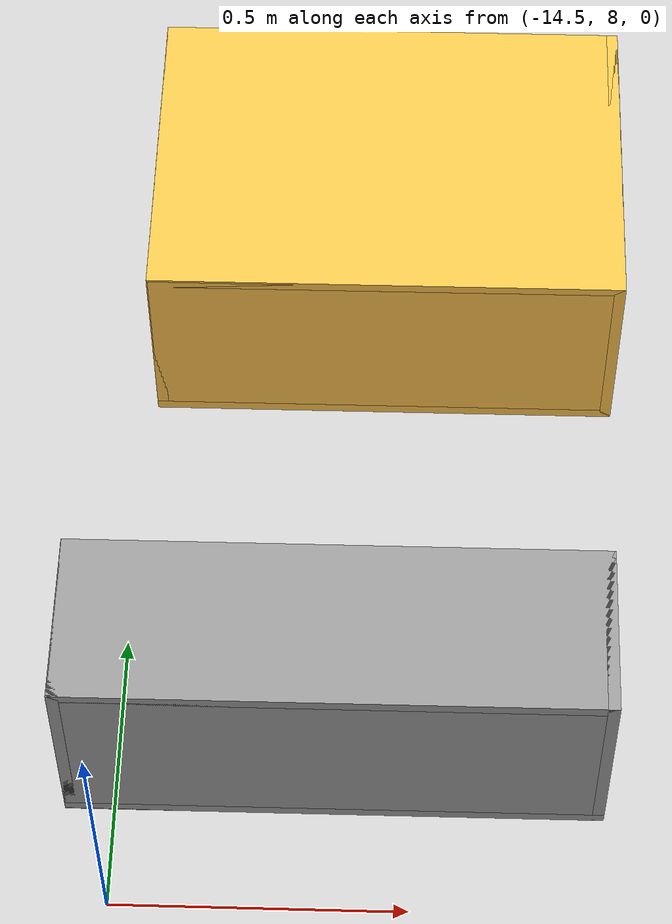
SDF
<sdf version="1.6">
 <world name="default">
  <model name="ground_plane">
   <static>1</static>
   <link name="link">
    <collision name="collision">
     <geometry><plane><normal>0 0 1</normal><size>100 100</size></plane></geometry>
     <surface><friction><ode><mu>100</mu><mu2>50</mu2></ode></friction></surface>
    </collision>
    <visual name="visual">
     <cast_shadows>0</cast_shadows>
     <geometry><plane><normal>0 0 1</normal><size>100 100</size></plane></geometry>
     <material>
      <script><uri>file://media/materials/scripts/gazebo.material</uri><name>Gazebo/Grey</name></script>
     </material>
    </visual>
   </link>
  </model>
  <model name="Fridge_Cabinet_33x15_0">
   <link name="Wall_17">
    <pose>0 0 0.01 0 -0 0</pose>
    <inertial>
     <mass>4.8627</mass>
     <inertia><ixx>0.146</ixx><iyy>0.4318</iyy><izz>0.2861</izz><ixy>0</ixy><ixz>0</ixz><iyz>0</iyz></inertia>
    </inertial>
    <collision name="Wall_17_Collision"><geometry><box><size>0.84 0.6 0.02</size></box></geometry></collision>
    <visual name="Wall_17_Visual">
     <geometry><box><size>0.84 0.6 0.02</size></box></geometry>
     <material>
      <script><uri>file://media/materials/scripts/gazebo.material</uri><name>Gazebo/Grey</name></script>
      <ambient>1 0.764706 0.305882 1</ambient>
     </material>
    </visual>
   </link>
   <joint name="17_21" type="fixed">
    <pose>0.42 0 0 0 -0 0</pose>
    <parent>Wall_21</parent>
    <child>Wall_17</child>
    <axis>
     <xyz>1 0 0</xyz>
     <use_parent_model_frame>0</use_parent_model_frame>
     <limit><lower>-1e+16</lower><upper>1e+16</upper></limit>
    </axis>
   </joint>
   <joint name="17_19" type="fixed">
    <pose>-0.42 0 0 0 -0 0</pose>
    <parent>Wall_19</parent>
    <child>Wall_17</child>
    <axis>
     <xyz>1 0 0</xyz>
     <use_parent_model_frame>0</use_parent_model_frame>
     <limit><lower>-1e+16</lower><upper>1e+16</upper></limit>
    </axis>
   </joint>
   <joint name="17_25" type="fixed">
    <pose>0 -0.3 0 0 -0 0</pose>
    <parent>Wall_25</parent>
    <child>Wall_17</child>
    <axis>
     <xyz>0 1 0</xyz>
     <use_parent_model_frame>0</use_parent_model_frame>
     <limit><lower>-1e+16</lower><upper>1e+16</upper></limit>
    </axis>
   </joint>
   <link name="Wall_19">
    <pose>-0.41 0 0.192 0 -0 0</pose>
    <inertial>
     <mass>2.223</mass>
     <inertia><ixx>0.0668</ixx><iyy>0.094</iyy><izz>0.0274</izz><ixy>0</ixy><ixz>0</ixz><iyz>0</iyz></inertia>
    </inertial>
    <collision name="Wall_19_Collision"><geometry><box><size>0.02 0.6 0.384</size></box></geometry></collision>
    <visual name="Wall_19_Visual">
     <geometry><box><size>0.02 0.6 0.384</size></box></geometry>
     <material>
      <script><uri>file://media/materials/scripts/gazebo.material</uri><name>Gazebo/Grey</name></script>
      <ambient>1 0.764706 0.305882 1</ambient>
     </material>
    </visual>
   </link>
   <link name="Wall_21">
    <pose>0.41 0 0.192 0 -0 0</pose>
    <inertial>
     <mass>2.223</mass>
     <inertia><ixx>0.0668</ixx><iyy>0.094</iyy><izz>0.0274</izz><ixy>0</ixy><ixz>0</ixz><iyz>0</iyz></inertia>
    </inertial>
    <collision name="Wall_21_Collision"><geometry><box><size>0.02 0.6 0.384</size></box></geometry></collision>
    <visual name="Wall_21_Visual">
     <geometry><box><size>0.02 0.6 0.384</size></box></geometry>
     <material>
      <script><uri>file://media/materials/scripts/gazebo.material</uri><name>Gazebo/Grey</name></script>
      <ambient>1 0.764706 0.305882 1</ambient>
     </material>
    </visual>
   </link>
   <link name="Wall_23">
    <pose>0 0 0.374 0 -0 0</pose>
    <inertial>
     <mass>4.8627</mass>
     <inertia><ixx>0.146</ixx><iyy>0.4318</iyy><izz>0.2861</izz><ixy>0</ixy><ixz>0</ixz><iyz>0</iyz></inertia>
    </inertial>
    <collision name="Wall_23_Collision"><geometry><box><size>0.84 0.6 0.02</size></box></geometry></collision>
    <visual name="Wall_23_Visual">
     <geometry><box><size>0.84 0.6 0.02</size></box></geometry>
     <material>
      <script><uri>file://media/materials/scripts/gazebo.material</uri><name>Gazebo/Grey</name></script>
      <ambient>1 0.764706 0.305882 1</ambient>
     </material>
    </visual>
   </link>
   <joint name="23_21" type="fixed">
    <pose>0.42 0 0 0 -0 0</pose>
    <parent>Wall_21</parent>
    <child>Wall_23</child>
    <axis>
     <xyz>0 0 1</xyz>
     <use_parent_model_frame>0</use_parent_model_frame>
     <limit><lower>-1e+16</lower><upper>1e+16</upper></limit>
    </axis>
   </joint>
   <joint name="23_19" type="fixed">
    <pose>-0.42 0 0 0 -0 0</pose>
    <parent>Wall_19</parent>
    <child>Wall_23</child>
    <axis>
     <xyz>0 0 1</xyz>
     <use_parent_model_frame>0</use_parent_model_frame>
     <limit><lower>-1e+16</lower><upper>1e+16</upper></limit>
    </axis>
   </joint>
   <joint name="23_25" type="fixed">
    <pose>0 -0.3 0 0 -0 0</pose>
    <parent>Wall_25</parent>
    <child>Wall_23</child>
    <axis>
     <xyz>0 0 1</xyz>
     <use_parent_model_frame>0</use_parent_model_frame>
     <limit><lower>-1e+16</lower><upper>1e+16</upper></limit>
    </axis>
   </joint>
   <link name="Wall_25">
    <pose>0 -0.29 0.19 0 -0 0</pose>
    <inertial>
     <mass>3.0651</mass>
     <inertia><ixx>0.037</ixx><iyy>0.1786</iyy><izz>0.2154</izz><ixy>0</ixy><ixz>0</ixz><iyz>0</iyz></inertia>
    </inertial>
    <collision name="Wall_25_Collision"><geometry><box><size>0.836 0.02 0.38</size></box></geometry></collision>
    <visual name="Wall_25_Visual">
     <geometry><box><size>0.836 0.02 0.38</size></box></geometry>
     <material>
      <script><uri>file://media/materials/scripts/gazebo.material</uri><name>Gazebo/Grey</name></script>
      <ambient>1 0.764706 0.305882 1</ambient>
     </material>
    </visual>
   </link>
   <joint name="25_21" type="fixed">
    <pose>0.42 0 0 0 -0 0</pose>
    <parent>Wall_21</parent>
    <child>Wall_25</child>
    <axis>
     <xyz>0 1 0</xyz>
     <use_parent_model_frame>0</use_parent_model_frame>
     <limit><lower>-1e+16</lower><upper>1e+16</upper></limit>
    </axis>
   </joint>
   <joint name="25_19" type="fixed">
    <pose>-0.42 0 0 0 -0 0</pose>
    <parent>Wall_19</parent>
    <child>Wall_25</child>
    <axis>
     <xyz>0 1 0</xyz>
     <use_parent_model_frame>0</use_parent_model_frame>
     <limit><lower>-1e+16</lower><upper>1e+16</upper></limit>
    </axis>
   </joint>
   <static>1</static>
   <pose>-14.0613 9.31058 0 0 -0 0</pose>
  </model>
  <model name="Wall_Cabinet_36x15W">
   <link name="Wall_0">
    <pose>0 0 0.01 0 -0 0</pose>
    <inertial>
     <mass>1.9796</mass>
     <inertia><ixx>0.0145</ixx><iyy>0.1511</iyy><izz>0.1367</izz><ixy>0</ixy><ixz>0</ixz><iyz>0</iyz></inertia>
    </inertial>
    <collision name="Wall_0_Collision"><geometry><box><size>0.91 0.296 0.02</size></box></geometry></collision>
    <visual name="Wall_0_Visual">
     <geometry><box><size>0.91 0.296 0.02</size></box></geometry>
     <material>
      <script><uri>file://media/materials/scripts/gazebo.material</uri><name>Gazebo/Grey</name></script>
      <ambient>1 1 1 1</ambient>
     </material>
    </visual>
   </link>
   <joint name="0_2" type="fixed">
    <pose>-0.455 0 0 0 -0 0</pose>
    <parent>Wall_2</parent>
    <child>Wall_0</child>
    <axis>
     <xyz>0 0 1</xyz>
     <use_parent_model_frame>0</use_parent_model_frame>
     <limit><lower>-1e+16</lower><upper>1e+16</upper></limit>
    </axis>
   </joint>
   <joint name="0_4" type="fixed">
    <pose>0.455 0 0 0 -0 0</pose>
    <parent>Wall_4</parent>
    <child>Wall_0</child>
    <axis>
     <xyz>0 0 1</xyz>
     <use_parent_model_frame>0</use_parent_model_frame>
     <limit><lower>-1e+16</lower><upper>1e+16</upper></limit>
    </axis>
   </joint>
   <joint name="0_8" type="fixed">
    <pose>0 -0.148 0 0 -0 0</pose>
    <parent>Wall_8</parent>
    <child>Wall_0</child>
    <axis>
     <xyz>0 0 1</xyz>
     <use_parent_model_frame>0</use_parent_model_frame>
     <limit><lower>-1e+16</lower><upper>1e+16</upper></limit>
    </axis>
   </joint>
   <link name="Wall_2">
    <pose>-0.445 0 0.192 0 -0 0</pose>
    <inertial>
     <mass>0.8353</mass>
     <inertia><ixx>0.0061</ixx><iyy>0.0164</iyy><izz>0.0103</izz><ixy>0</ixy><ixz>0</ixz><iyz>0</iyz></inertia>
    </inertial>
    <collision name="Wall_2_Collision"><geometry><box><size>0.02 0.296 0.384</size></box></geometry></collision>
    <visual name="Wall_2_Visual">
     <geometry><box><size>0.02 0.296 0.384</size></box></geometry>
     <material>
      <script><uri>file://media/materials/scripts/gazebo.material</uri><name>Gazebo/Grey</name></script>
      <ambient>1 1 1 1</ambient>
     </material>
    </visual>
   </link>
   <link name="Wall_4">
    <pose>0.445 0 0.192 0 -0 0</pose>
    <inertial>
     <mass>0.8353</mass>
     <inertia><ixx>0.0061</ixx><iyy>0.0164</iyy><izz>0.0103</izz><ixy>0</ixy><ixz>0</ixz><iyz>0</iyz></inertia>
    </inertial>
    <collision name="Wall_4_Collision"><geometry><box><size>0.02 0.296 0.384</size></box></geometry></collision>
    <visual name="Wall_4_Visual">
     <geometry><box><size>0.02 0.296 0.384</size></box></geometry>
     <material>
      <script><uri>file://media/materials/scripts/gazebo.material</uri><name>Gazebo/Grey</name></script>
      <ambient>1 1 1 1</ambient>
     </material>
    </visual>
   </link>
   <link name="Wall_6">
    <pose>0 0 0.374 0 -0 0</pose>
    <inertial>
     <mass>1.9796</mass>
     <inertia><ixx>0.0145</ixx><iyy>0.1511</iyy><izz>0.1367</izz><ixy>0</ixy><ixz>0</ixz><iyz>0</iyz></inertia>
    </inertial>
    <collision name="Wall_6_Collision"><geometry><box><size>0.91 0.296 0.02</size></box></geometry></collision>
    <visual name="Wall_6_Visual">
     <geometry><box><size>0.91 0.296 0.02</size></box></geometry>
     <material>
      <script><uri>file://media/materials/scripts/gazebo.material</uri><name>Gazebo/Grey</name></script>
      <ambient>1 1 1 1</ambient>
     </material>
    </visual>
   </link>
   <joint name="6_2" type="fixed">
    <pose>-0.455 0 0 0 -0 0</pose>
    <parent>Wall_2</parent>
    <child>Wall_6</child>
    <axis>
     <xyz>0 0 1</xyz>
     <use_parent_model_frame>0</use_parent_model_frame>
     <limit><lower>-1e+16</lower><upper>1e+16</upper></limit>
    </axis>
   </joint>
   <joint name="6_4" type="fixed">
    <pose>0.455 0 0 0 -0 0</pose>
    <parent>Wall_4</parent>
    <child>Wall_6</child>
    <axis>
     <xyz>0 0 1</xyz>
     <use_parent_model_frame>0</use_parent_model_frame>
     <limit><lower>-1e+16</lower><upper>1e+16</upper></limit>
    </axis>
   </joint>
   <joint name="6_8" type="fixed">
    <pose>0 -0.148 0 0 -0 0</pose>
    <parent>Wall_8</parent>
    <child>Wall_6</child>
    <axis>
     <xyz>0 0 1</xyz>
     <use_parent_model_frame>0</use_parent_model_frame>
     <limit><lower>-1e+16</lower><upper>1e+16</upper></limit>
    </axis>
   </joint>
   <link name="Wall_8">
    <pose>0 -0.138 0.19 0 -0 0</pose>
    <inertial>
     <mass>2.5302</mass>
     <inertia><ixx>0.0305</ixx><iyy>0.1732</iyy><izz>0.2035</izz><ixy>0</ixy><ixz>0</ixz><iyz>0</iyz></inertia>
    </inertial>
    <collision name="Wall_8_Collision"><geometry><box><size>0.906 0.02 0.38</size></box></geometry></collision>
    <visual name="Wall_8_Visual">
     <geometry><box><size>0.906 0.02 0.38</size></box></geometry>
     <material>
      <script><uri>file://media/materials/scripts/gazebo.material</uri><name>Gazebo/Grey</name></script>
      <ambient>1 1 1 1</ambient>
     </material>
    </visual>
   </link>
   <joint name="8_2" type="fixed">
    <pose>-0.453 0 0 0 -0 0</pose>
    <parent>Wall_2</parent>
    <child>Wall_8</child>
    <axis>
     <xyz>0 1 0</xyz>
     <use_parent_model_frame>0</use_parent_model_frame>
     <limit><lower>-1e+16</lower><upper>1e+16</upper></limit>
    </axis>
   </joint>
   <joint name="8_4" type="fixed">
    <pose>0.453 0 0 0 -0 0</pose>
    <parent>Wall_4</parent>
    <child>Wall_8</child>
    <axis>
     <xyz>0 1 0</xyz>
     <use_parent_model_frame>0</use_parent_model_frame>
     <limit><lower>-1e+16</lower><upper>1e+16</upper></limit>
    </axis>
   </joint>
   <static>1</static>
   <pose>-14.1286 8.32441 0 0 -0 0</pose>
  </model>
 </world>
</sdf>
